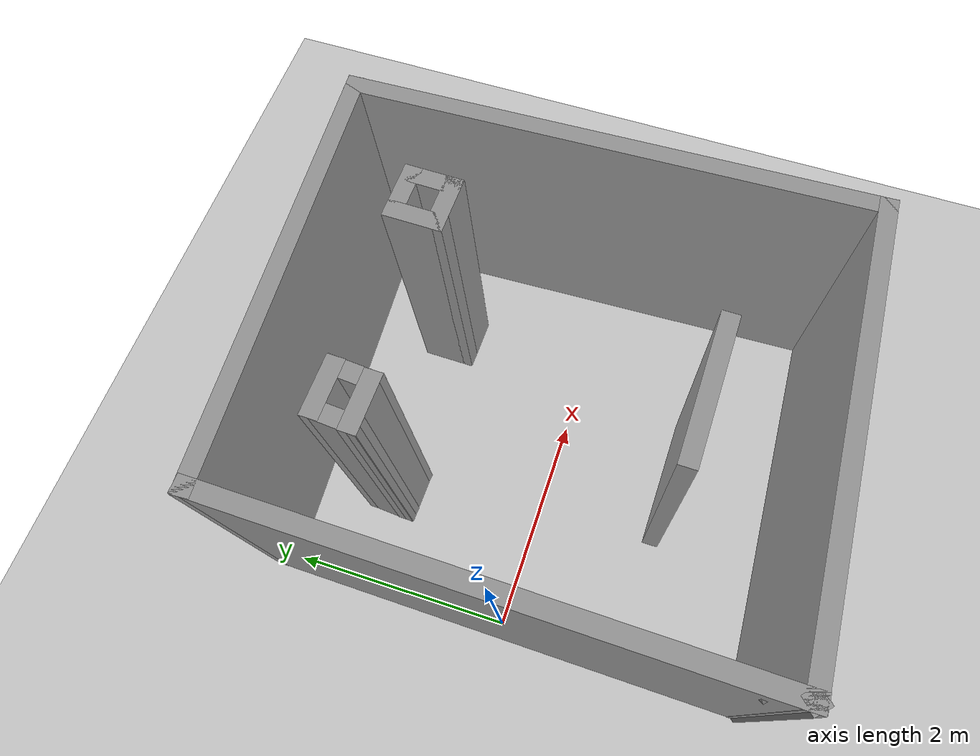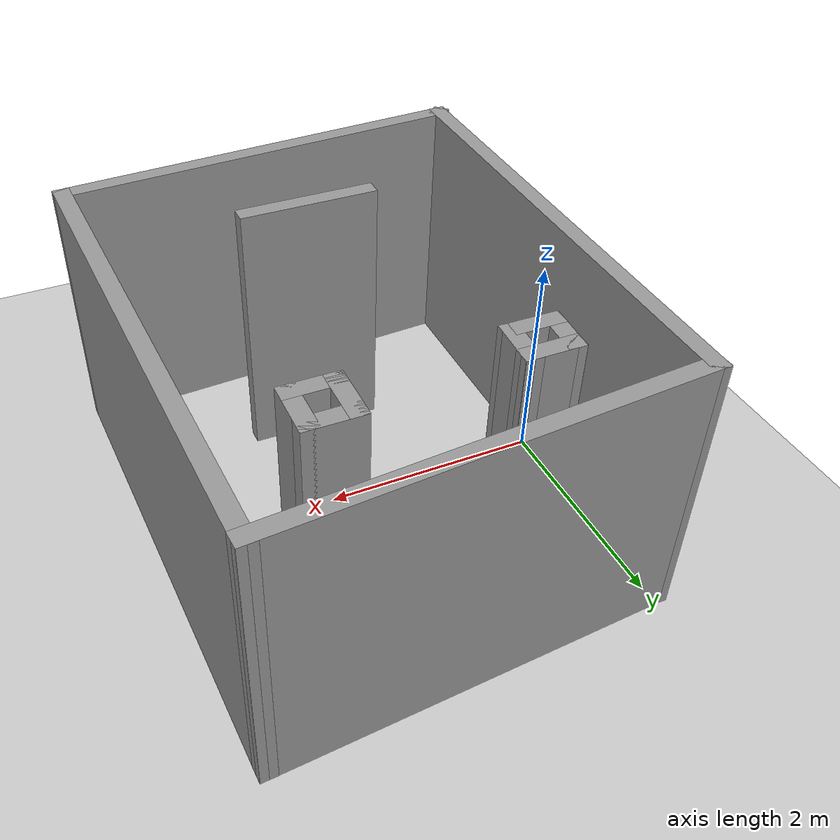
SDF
<sdf version="1.6">
 <world name="default">
  <light name="sun" type="directional">
   <pose>0 0 10 0 -0 0</pose>
   <diffuse>0.8 0.8 0.8 1</diffuse>
   <specular>0.1 0.1 0.1 1</specular>
   <attenuation>
    <range>1000</range>
    <constant>0.9</constant>
    <linear>0.01</linear>
    <quadratic>0.001</quadratic>
   </attenuation>
   <direction>-0.5 0.5 -1</direction>
  </light>
  <model name="ground_plane">
   <static>1</static>
   <link name="link">
    <collision name="collision">
     <geometry><plane><normal>0 0 1</normal><size>100 100</size></plane></geometry>
     <surface><friction><ode><mu>100</mu><mu2>50</mu2></ode></friction></surface>
    </collision>
    <visual name="visual">
     <cast_shadows>0</cast_shadows>
     <geometry><plane><normal>0 0 1</normal><size>100 100</size></plane></geometry>
     <material>
      <script><uri>file://media/materials/scripts/gazebo.material</uri><name>Gazebo/Grey</name></script>
     </material>
    </visual>
   </link>
  </model>
  <gravity>0 0 -9.8</gravity>
  <magnetic_field>6e-06 2.3e-05 -4.2e-05</magnetic_field>
  <atmosphere type="adiabatic"/>
  <physics name="default_physics" default="0" type="ode">
   <max_step_size>0.001</max_step_size>
   <real_time_factor>1</real_time_factor>
   <real_time_update_rate>1000</real_time_update_rate>
  </physics>
  <scene><ambient>0.4 0.4 0.4 1</ambient><background>0.7 0.7 0.7 1</background><shadows>1</shadows></scene>
  <spherical_coordinates>
   <surface_model>EARTH_WGS84</surface_model>
   <latitude_deg>0</latitude_deg>
   <longitude_deg>0</longitude_deg>
   <elevation>0</elevation>
   <heading_deg>0</heading_deg>
  </spherical_coordinates>
  <model name="room_0">
   <pose>1.77119 -0.012966 0 0 -0 0.773525</pose>
   <link name="Wall_34">
    <collision name="Wall_34_Collision">
     <geometry><box><size>4.5 0.15 2.5</size></box></geometry>
     <pose>0 0 1.25 0 -0 0</pose>
    </collision>
    <visual name="Wall_34_Visual">
     <pose>0 0 1.25 0 -0 0</pose>
     <geometry><box><size>4.5 0.15 2.5</size></box></geometry>
     <material>
      <script><uri>file://media/materials/scripts/gazebo.material</uri><name>Gazebo/Grey</name></script>
      <ambient>1 1 1 1</ambient>
     </material>
    </visual>
    <pose>-1.34545 1.24499 0 0 0 -2.35619</pose>
   </link>
   <link name="Wall_35">
    <collision name="Wall_35_Collision">
     <geometry><box><size>0.15 0.15 2.5</size></box></geometry>
     <pose>0 0 1.25 0 -0 0</pose>
    </collision>
    <visual name="Wall_35_Visual">
     <pose>0 0 1.25 0 -0 0</pose>
     <geometry><box><size>0.15 0.15 2.5</size></box></geometry>
     <material>
      <script><uri>file://media/materials/scripts/gazebo.material</uri><name>Gazebo/Grey</name></script>
      <ambient>1 1 1 1</ambient>
     </material>
    </visual>
    <pose>-2.88341 -0.292966 0 0 -0 0</pose>
   </link>
   <link name="Wall_37">
    <collision name="Wall_37_Collision">
     <geometry><box><size>3.88842 0.15 2.5</size></box></geometry>
     <pose>0 0 1.25 0 -0 0</pose>
    </collision>
    <visual name="Wall_37_Visual">
     <pose>0 0 1.25 0 -0 0</pose>
     <geometry><box><size>3.88842 0.15 2.5</size></box></geometry>
     <material>
      <script><uri>file://media/materials/scripts/gazebo.material</uri><name>Gazebo/Grey</name></script>
      <ambient>1 1 1 1</ambient>
     </material>
    </visual>
    <pose>-1.4892 -1.53801 0 0 -0 2.41265</pose>
   </link>
   <link name="Wall_39">
    <collision name="Wall_39_Collision">
     <geometry><box><size>4.56172 0.15 2.5</size></box></geometry>
     <pose>0 0 1.25 0 -0 0</pose>
    </collision>
    <visual name="Wall_39_Visual">
     <pose>0 0 1.25 0 -0 0</pose>
     <geometry><box><size>4.56172 0.15 2.5</size></box></geometry>
     <material>
      <script><uri>file://media/materials/scripts/gazebo.material</uri><name>Gazebo/Grey</name></script>
      <ambient>1 1 1 1</ambient>
     </material>
    </visual>
    <pose>1.39426 -1.1558 0 0 0 -2.31194</pose>
   </link>
   <link name="Wall_41">
    <collision name="Wall_41_Collision">
     <geometry><box><size>3.69747 0.15 2.5</size></box></geometry>
     <pose>0 0 1.25 0 -0 0</pose>
    </collision>
    <visual name="Wall_41_Visual">
     <pose>0 0 1.25 0 -0 0</pose>
     <geometry><box><size>3.69747 0.15 2.5</size></box></geometry>
     <material>
      <script><uri>file://media/materials/scripts/gazebo.material</uri><name>Gazebo/Grey</name></script>
      <ambient>1 1 1 1</ambient>
     </material>
    </visual>
    <pose>1.53801 1.6272 0 0 0 -0.709681</pose>
   </link>
   <link name="Wall_46">
    <collision name="Wall_46_Collision">
     <geometry><box><size>0.5 0.15 2.5</size></box></geometry>
     <pose>0 0 1.25 0 -0 0</pose>
    </collision>
    <visual name="Wall_46_Visual">
     <pose>0 0 1.25 0 -0 0</pose>
     <geometry><box><size>0.5 0.15 2.5</size></box></geometry>
     <material>
      <script><uri>file://media/materials/scripts/gazebo.material</uri><name>Gazebo/Grey</name></script>
      <ambient>1 1 1 1</ambient>
     </material>
    </visual>
    <pose>0.454253 1.6817 0 0 0 -0.785398</pose>
   </link>
   <link name="Wall_49">
    <collision name="Wall_49_Collision">
     <geometry><box><size>0.5 0.15 2.5</size></box></geometry>
     <pose>0 0 1.25 0 -0 0</pose>
    </collision>
    <visual name="Wall_49_Visual">
     <pose>0 0 1.25 0 -0 0</pose>
     <geometry><box><size>0.5 0.15 2.5</size></box></geometry>
     <material>
      <script><uri>file://media/materials/scripts/gazebo.material</uri><name>Gazebo/Grey</name></script>
      <ambient>1 1 1 1</ambient>
     </material>
    </visual>
    <pose>0.230092 1.48176 0 0 0 -0.785398</pose>
   </link>
   <link name="Wall_51">
    <collision name="Wall_51_Collision">
     <geometry><box><size>0.450374 0.15 2.5</size></box></geometry>
     <pose>0 0 1.25 0 -0 0</pose>
    </collision>
    <visual name="Wall_51_Visual">
     <pose>0 0 1.25 0 -0 0</pose>
     <geometry><box><size>0.450374 0.15 2.5</size></box></geometry>
     <material>
      <script><uri>file://media/materials/scripts/gazebo.material</uri><name>Gazebo/Grey</name></script>
      <ambient>1 1 1 1</ambient>
     </material>
    </visual>
    <pose>0.218429 1.70548 0 0 0 -2.41324</pose>
   </link>
   <link name="Wall_53">
    <collision name="Wall_53_Collision">
     <geometry><box><size>0.450374 0.15 2.5</size></box></geometry>
     <pose>0 0 1.25 0 -0 0</pose>
    </collision>
    <visual name="Wall_53_Visual">
     <pose>0 0 1.25 0 -0 0</pose>
     <geometry><box><size>0.450374 0.15 2.5</size></box></geometry>
     <material>
      <script><uri>file://media/materials/scripts/gazebo.material</uri><name>Gazebo/Grey</name></script>
      <ambient>1 1 1 1</ambient>
     </material>
    </visual>
    <pose>0.465916 1.45799 0 0 0 -2.41324</pose>
   </link>
   <link name="Wall_55">
    <collision name="Wall_55_Collision">
     <geometry><box><size>0.5 0.15 2.5</size></box></geometry>
     <pose>0 0 1.25 0 -0 0</pose>
    </collision>
    <visual name="Wall_55_Visual">
     <pose>0 0 1.25 0 -0 0</pose>
     <geometry><box><size>0.5 0.15 2.5</size></box></geometry>
     <material>
      <script><uri>file://media/materials/scripts/gazebo.material</uri><name>Gazebo/Grey</name></script>
      <ambient>1 1 1 1</ambient>
     </material>
    </visual>
    <pose>1.7251 0.533411 0 0 0 -0.785398</pose>
   </link>
   <link name="Wall_56">
    <collision name="Wall_56_Collision">
     <geometry><box><size>0.5 0.15 2.5</size></box></geometry>
     <pose>0 0 1.25 0 -0 0</pose>
    </collision>
    <visual name="Wall_56_Visual">
     <pose>0 0 1.25 0 -0 0</pose>
     <geometry><box><size>0.5 0.15 2.5</size></box></geometry>
     <material>
      <script><uri>file://media/materials/scripts/gazebo.material</uri><name>Gazebo/Grey</name></script>
      <ambient>1 1 1 1</ambient>
     </material>
    </visual>
    <pose>1.7251 0.285924 0 0 0 -2.35619</pose>
   </link>
   <link name="Wall_57">
    <collision name="Wall_57_Collision">
     <geometry><box><size>0.5 0.15 2.5</size></box></geometry>
     <pose>0 0 1.25 0 -0 0</pose>
    </collision>
    <visual name="Wall_57_Visual">
     <pose>0 0 1.25 0 -0 0</pose>
     <geometry><box><size>0.5 0.15 2.5</size></box></geometry>
     <material>
      <script><uri>file://media/materials/scripts/gazebo.material</uri><name>Gazebo/Grey</name></script>
      <ambient>1 1 1 1</ambient>
     </material>
    </visual>
    <pose>1.47761 0.285924 0 0 -0 2.35619</pose>
   </link>
   <link name="Wall_58">
    <collision name="Wall_58_Collision">
     <geometry><box><size>0.5 0.15 2.5</size></box></geometry>
     <pose>0 0 1.25 0 -0 0</pose>
    </collision>
    <visual name="Wall_58_Visual">
     <pose>0 0 1.25 0 -0 0</pose>
     <geometry><box><size>0.5 0.15 2.5</size></box></geometry>
     <material>
      <script><uri>file://media/materials/scripts/gazebo.material</uri><name>Gazebo/Grey</name></script>
      <ambient>1 1 1 1</ambient>
     </material>
    </visual>
    <pose>1.47761 0.533411 0 0 -0 0.785398</pose>
   </link>
   <link name="Wall_61">
    <collision name="Wall_61_Collision">
     <geometry><box><size>1.25 0.15 2.5</size></box></geometry>
     <pose>0 0 1.25 0 -0 0</pose>
    </collision>
    <visual name="Wall_61_Visual">
     <pose>0 0 1.25 0 -0 0</pose>
     <geometry><box><size>1.25 0.15 2.5</size></box></geometry>
     <material>
      <script><uri>file://media/materials/scripts/gazebo.material</uri><name>Gazebo/Grey</name></script>
      <ambient>1 1 1 1</ambient>
     </material>
    </visual>
    <pose>-0.784327 -0.771865 0 0 -0 2.35619</pose>
   </link>
   <static>1</static>
  </model>
  <model name="camera">
   <static>true</static>
   <pose>-.1 -1.96 2.25 0 .82 .8</pose>
   <link name="link">
    <visual name="visual"><geometry><box><size>0.1 0.1 0.1</size></box></geometry></visual>
    <sensor name="my_camera" type="camera">
     <camera>
      <save enabled="true"><path>/tmp/camera_save_tutorial</path></save>
      <horizontal_fov>1.047</horizontal_fov>
      <image><width>1920</width><height>1080</height></image>
      <clip><near>0.1</near><far>100</far></clip>
     </camera>
     <always_on>1</always_on>
     <update_rate>30</update_rate>
    </sensor>
   </link>
  </model>
 </world>
</sdf>
